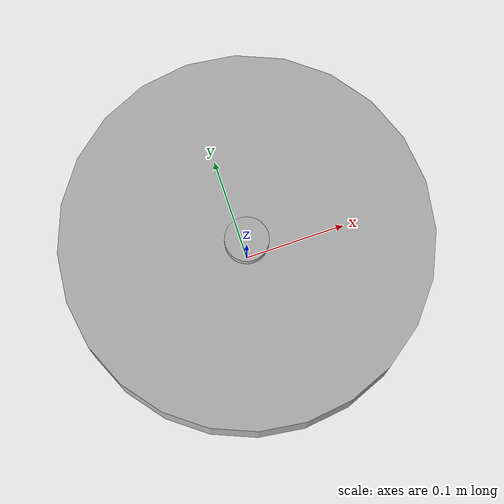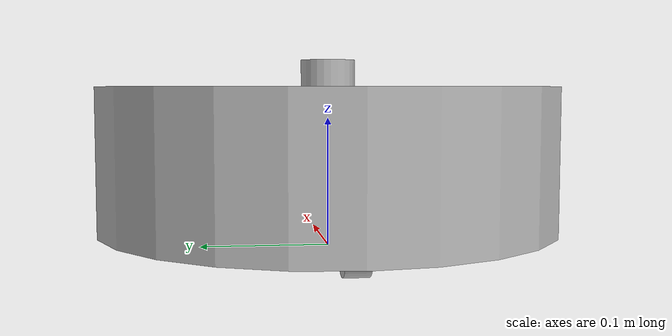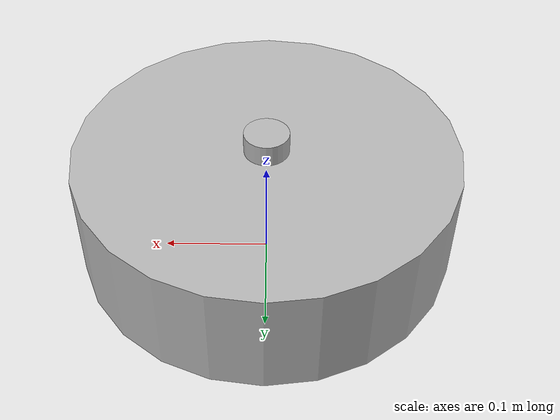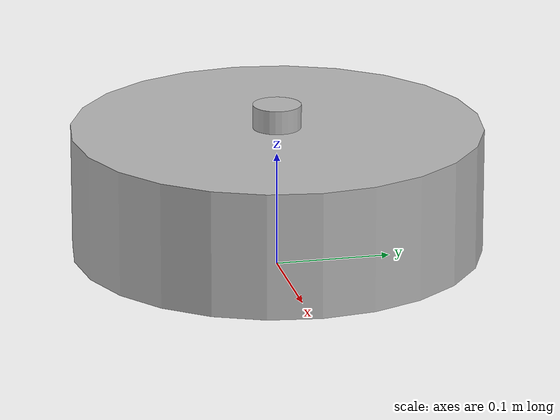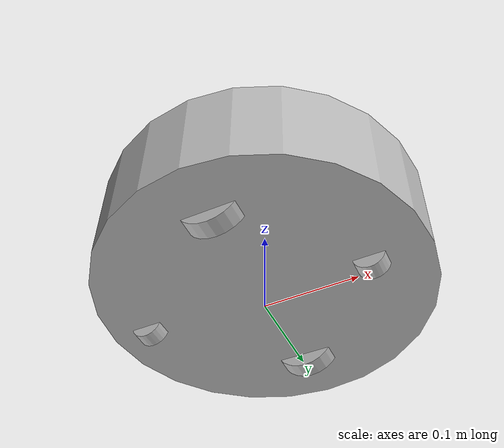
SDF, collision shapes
<sdf version='1.6'>
  <model name='kobuki_standalone'>
    <plugin name="plugin" filename="libturtlebot_plugin.so"/>
    <link name='base_footprint'>
      <pose frame=''>0 0 0 0 -0 0</pose>
      <inertial>
        <pose frame=''>0.009866 2.6e-05 0.010277 0 -0 0</pose>
        <mass>2.4213</mass>
        <inertia>
          <ixx>0.0224044</ixx>
          <ixy>-2.89213e-06</ixy>
          <ixz>4.10737e-06</ixz>
          <iyy>0.0226237</iyy>
          <iyz>-1.24762e-06</iyz>
          <izz>0.0394834</izz>
        </inertia>
      </inertial>
      <collision name='base_footprint_fixed_joint_lump__base_collision'>
        <pose frame=''>0 0 0.06969 0 -0 0</pose>
        <geometry>
          <cylinder>
            <length>0.10938</length>
            <radius>0.178</radius>
          </cylinder>
        </geometry>
      </collision>
      <collision name='base_footprint_fixed_joint_lump__caster_back_link_collision_1'>
        <pose frame=''>-0.135 0 0.0192 -1.5708 0 0</pose>
        <geometry>
          <cylinder>
            <length>0.0176</length>
            <radius>0.017</radius>
          </cylinder>
        </geometry>
        <surface>
          <contact>
            <ode>
              <kp>1e+06</kp>
              <kd>100</kd>
              <max_vel>1</max_vel>
              <min_depth>0.001</min_depth>
            </ode>
          </contact>
          <friction>
            <ode>
              <mu>0</mu>
              <mu2>0</mu2>
            </ode>
          </friction>
        </surface>
      </collision>
      <collision name='base_footprint_fixed_joint_lump__caster_front_link_collision_2'>
        <pose frame=''>0.115 0 0.0172 -1.5708 0 0</pose>
        <geometry>
          <cylinder>
            <length>0.0176</length>
            <radius>0.017</radius>
          </cylinder>
        </geometry>
        <surface>
          <contact>
            <ode>
              <kp>1e+06</kp>
              <kd>100</kd>
              <max_vel>1</max_vel>
              <min_depth>0.001</min_depth>
            </ode>
          </contact>
          <friction>
            <ode>
              <mu>0</mu>
              <mu2>0</mu2>
            </ode>
          </friction>
        </surface>
      </collision>
      <visual name='base_footprint_fixed_joint_lump__base_link_visual'>
        <pose frame=''>0.001 0 0.06219 0 -0 0</pose>
        <geometry>
          <mesh>
            <scale>1 1 1</scale>
            <uri>model://kobuki_with_laser/meshes/main_body.dae</uri>
          </mesh>
        </geometry>
        <material>
          <script>
            <uri>__default__</uri>
            <name>__default__</name>
          </script>
        </material>
      </visual>
      <velocity_decay/>
      <sensor name='bumpers' type='contact'>
        <always_on>1</always_on>
        <update_rate>50</update_rate>
        <visualize>1</visualize>
        <contact>
          <collision>base_footprint_fixed_joint_lump__base_collision</collision>
          <topic>__default_topic__</topic>
        </contact>
        <pose frame=''>0 0 0.0102 0 -0 0</pose>
      </sensor>
      <velocity_decay/>
      <velocity_decay/>
      <velocity_decay/>
      <sensor name='cliff_sensor_front' type='ray'>
        <always_on>1</always_on>
        <update_rate>50</update_rate>
        <visualize>1</visualize>
        <ray>
          <scan>
            <horizontal>
              <samples>50</samples>
              <resolution>1</resolution>
              <min_angle>-0.0436</min_angle>
              <max_angle>0.0436</max_angle>
            </horizontal>
          </scan>
          <range>
            <min>0.01</min>
            <max>0.15</max>
            <resolution>1</resolution>
          </range>
        </ray>
        <pose frame=''>0.156 0 0.0316 3.14159 1.57079 3.14159</pose>
      </sensor>
      <velocity_decay/>
      <sensor name='cliff_sensor_left' type='ray'>
        <always_on>1</always_on>
        <update_rate>50</update_rate>
        <visualize>1</visualize>
        <ray>
          <scan>
            <horizontal>
              <samples>50</samples>
              <resolution>1</resolution>
              <min_angle>-0.0436</min_angle>
              <max_angle>0.0436</max_angle>
            </horizontal>
          </scan>
          <range>
            <min>0.01</min>
            <max>0.15</max>
            <resolution>1</resolution>
          </range>
        </ray>
        <pose frame=''>0.08734 0.13601 0.0316 3.14159 1.57079 3.14159</pose>
      </sensor>
      <velocity_decay/>
      <sensor name='cliff_sensor_right' type='ray'>
        <always_on>1</always_on>
        <update_rate>50</update_rate>
        <visualize>1</visualize>
        <ray>
          <scan>
            <horizontal>
              <samples>50</samples>
              <resolution>1</resolution>
              <min_angle>-0.0436</min_angle>
              <max_angle>0.0436</max_angle>
            </horizontal>
          </scan>
          <range>
            <min>0.01</min>
            <max>0.15</max>
            <resolution>1</resolution>
          </range>
        </ray>
        <pose frame=''>0.085 -0.13601 0.0316 3.14159 1.57079 3.14159</pose>
      </sensor>
      <gravity>1</gravity>
      <velocity_decay/>
      <sensor name='imu' type='imu'>
        <always_on>1</always_on>
        <update_rate>50</update_rate>
        <visualize>0</visualize>
        <imu>
          <angular_velocity>
            <x>
              <noise type='gaussian'>
                <mean>0</mean>
                <stddev>1.96e-06</stddev>
                <bias_mean>0</bias_mean>
                <bias_stddev>0</bias_stddev>
              </noise>
            </x>
            <y>
              <noise type='gaussian'>
                <mean>0</mean>
                <stddev>1.96e-06</stddev>
                <bias_mean>0</bias_mean>
                <bias_stddev>0</bias_stddev>
              </noise>
            </y>
            <z>
              <noise type='gaussian'>
                <mean>0</mean>
                <stddev>1.96e-06</stddev>
                <bias_mean>0</bias_mean>
                <bias_stddev>0</bias_stddev>
              </noise>
            </z>
          </angular_velocity>
          <linear_acceleration>
            <x>
              <noise type='gaussian'>
                <mean>0</mean>
                <stddev>0.017</stddev>
                <bias_mean>0.1</bias_mean>
                <bias_stddev>0.001</bias_stddev>
              </noise>
            </x>
            <y>
              <noise type='gaussian'>
                <mean>0</mean>
                <stddev>0.017</stddev>
                <bias_mean>0.1</bias_mean>
                <bias_stddev>0.001</bias_stddev>
              </noise>
            </y>
            <z>
              <noise type='gaussian'>
                <mean>0</mean>
                <stddev>0.017</stddev>
                <bias_mean>0.1</bias_mean>
                <bias_stddev>0.001</bias_stddev>
              </noise>
            </z>
          </linear_acceleration>
        </imu>
        <pose frame=''>0.056 0.062 0.0304 0 -0 0</pose>
      </sensor>
    </link>
    <link name='wheel_left_link'>
      <pose frame=''>0 0.115 0.0352 -1.5708 0 0</pose>
      <inertial>
        <pose frame=''>0 0 0 0 -0 0</pose>
        <mass>0.01</mass>
        <inertia>
          <ixx>0.001</ixx>
          <ixy>0</ixy>
          <ixz>0</ixz>
          <iyy>0.001</iyy>
          <iyz>0</iyz>
          <izz>0.001</izz>
        </inertia>
      </inertial>
      <collision name='wheel_left_link_collision'>
        <pose frame=''>0 0 0 0 -0 0</pose>
        <geometry>
          <cylinder>
            <length>0.0206</length>
            <radius>0.0352</radius>
          </cylinder>
        </geometry>
        <surface>
          <contact>
            <ode>
              <kp>1e+06</kp>
              <kd>100</kd>
              <max_vel>1</max_vel>
              <min_depth>0.001</min_depth>
            </ode>
          </contact>
          <friction>
            <ode>
              <mu>1</mu>
              <mu2>1</mu2>
            </ode>
          </friction>
        </surface>
      </collision>
      <visual name='wheel_left_link_visual'>
        <pose frame=''>0 0 0 0 -0 0</pose>
        <geometry>
          <mesh>
            <scale>1 1 1</scale>
            <uri>model://kobuki_with_laser/meshes/wheel.dae</uri>
          </mesh>
        </geometry>
        <material>
          <script>
            <uri>__default__</uri>
            <name>__default__</name>
          </script>
        </material>
      </visual>
      <gravity>1</gravity>
      <velocity_decay/>
    </link>
    <joint name='wheel_left_joint' type='revolute'>
      <child>wheel_left_link</child>
      <parent>base_footprint</parent>
      <axis>
        <xyz>0 1 0</xyz>
        <limit>
          <lower>-1e+16</lower>
          <upper>1e+16</upper>
        </limit>
        <dynamics>
          <spring_reference>0</spring_reference>
          <spring_stiffness>0</spring_stiffness>
        </dynamics>
        <use_parent_model_frame>1</use_parent_model_frame>
      </axis>
    </joint>
    <link name='wheel_right_link'>
      <pose frame=''>0 -0.115 0.0352 -1.5708 0 0</pose>
      <inertial>
        <pose frame=''>0 0 0 0 -0 0</pose>
        <mass>0.01</mass>
        <inertia>
          <ixx>0.001</ixx>
          <ixy>0</ixy>
          <ixz>0</ixz>
          <iyy>0.001</iyy>
          <iyz>0</iyz>
          <izz>0.001</izz>
        </inertia>
      </inertial>
      <collision name='wheel_right_link_collision'>
        <pose frame=''>0 0 0 0 -0 0</pose>
        <geometry>
          <cylinder>
            <length>0.0206</length>
            <radius>0.035</radius>
          </cylinder>
        </geometry>
        <surface>
          <contact>
            <ode>
              <kp>1e+06</kp>
              <kd>100</kd>
              <max_vel>1</max_vel>
              <min_depth>0.001</min_depth>
            </ode>
          </contact>
          <friction>
            <ode>
              <mu>1</mu>
              <mu2>1</mu2>
            </ode>
          </friction>
        </surface>
      </collision>
      <visual name='wheel_right_link_visual'>
        <pose frame=''>0 0 0 0 -0 0</pose>
        <geometry>
          <mesh>
            <scale>1 1 1</scale>
            <uri>model://kobuki_with_laser/meshes/wheel.dae</uri>
          </mesh>
        </geometry>
        <material>
          <script>
            <uri>__default__</uri>
            <name>__default__</name>
          </script>
        </material>
      </visual>
      <gravity>1</gravity>
      <velocity_decay/>
    </link>
    <joint name='wheel_right_joint' type='revolute'>
      <child>wheel_right_link</child>
      <parent>base_footprint</parent>
      <axis>
        <xyz>0 1 0</xyz>
        <limit>
          <lower>-1e+16</lower>
          <upper>1e+16</upper>
        </limit>
        <dynamics>
          <spring_reference>0</spring_reference>
          <spring_stiffness>0</spring_stiffness>
        </dynamics>
        <use_parent_model_frame>1</use_parent_model_frame>
      </axis>
    </joint>
    <static>0</static>

    <link name="hokuyo">
    <pose>0 0 0.11 0 0 0</pose>
      <inertial>
        <mass>0.1</mass>
      </inertial>
      <visual name="visual">
        <geometry>
          <mesh>
            <uri>model://hokuyo/meshes/hokuyo.dae</uri>
          </mesh>
        </geometry>
      </visual>
      <collision name="collision-base">
        <pose>0 0 -0.0145 0 0 0</pose>
        <geometry>
          <box>
            <size>0.05 0.05 0.041</size>
          </box>
        </geometry>
      </collision>
      <collision name="collision-top">
        <pose>0 0 0.0205 0 0 0</pose>
        <geometry>
          <cylinder>
            <radius>0.021</radius>
            <length>0.029</length>
          </cylinder>
        </geometry>
      </collision>
      <sensor name="laser" type="ray">
        <pose>0.01 0 0.0175 0 -0 0</pose>
        <ray>
          <scan>
            <horizontal>
              <samples>810</samples>
              <resolution>1</resolution>
              <min_angle>-2.35619449</min_angle>
              <max_angle>2.35619449</max_angle>
            </horizontal>
          </scan>
          <range>
            <min>0.05</min>
            <max>5</max>
            <resolution>0.01</resolution>
          </range>
        </ray>
        <plugin name="laser" filename="liblaser_plugin.so" />
        <always_on>1</always_on>
        <update_rate>30</update_rate>
        <visualize>false</visualize>
      </sensor>
    </link>

    <joint name="hokuyo_joint" type="fixed">
      <child>hokuyo</child>
      <parent>base_footprint</parent>
    </joint>

  </model>
</sdf>
